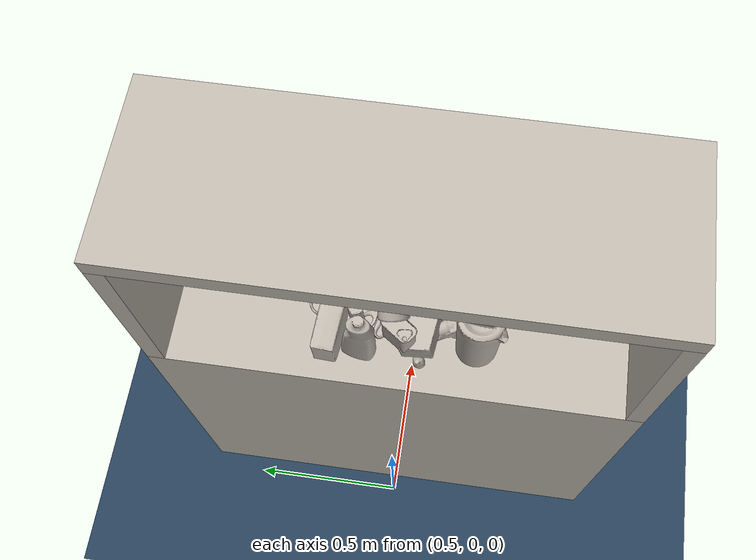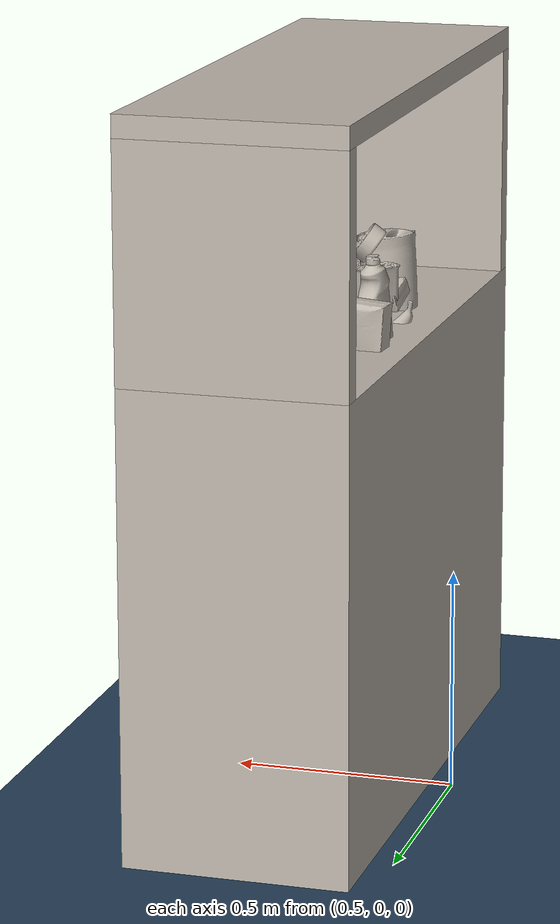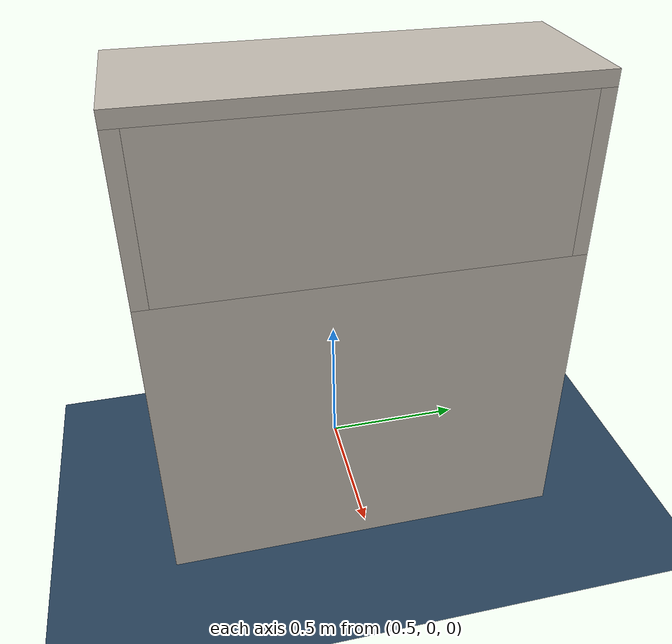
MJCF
<mujoco model="World">

  <compiler angle="radian" balanceinertia="true" inertiafromgeom="true" meshdir="/home/pracsys/GraspClutter6D_local" texturedir="/home/pracsys/GraspClutter6D_local" autolimits="true" />

  <option integrator="Euler" cone="elliptic" solver="CG" noslip_iterations="2">
    <flag warmstart="disable" multiccd="enable" />
  </option>

  <default>
    <geom density="10" />
  </default>

  <asset>

    <texture type="skybox" builtin="flat" rgb1="1 1 1" rgb2="0 0 0" width="512" height="512" />
    <texture name="grid" type="2d" builtin="checker" width="512" height="512" rgb1=".1 .2 .3" rgb2=".2 .3 .4" />
    <material name="grid" texture="grid" texrepeat="2 2" texuniform="true" specular="0" shininess="0" reflectance="0" emission="1" />

    <texture file="models/rs_table/ceramic.png" type="cube" name="tex-ceramic" />
    <material name="table_ceramic" reflectance="0.0" shininess="0.0" specular="0.2" texrepeat="1 1" texture="tex-ceramic" />
  <texture name="obj_000002_0_tex" type="2d" file="models_obj_m/obj_000002/obj_000002.png" /><material name="obj_000002_0_mat" texture="obj_000002_0_tex" specular="1.0" shininess="0.0" /><mesh name="obj_000002_0_vis" file="models_obj_m/obj_000002/obj_000002.obj" /><mesh name="obj_000002_0_obj_000002_collision_0" file="models_obj_m/obj_000002/obj_000002_collision_0.obj" /><mesh name="obj_000002_0_obj_000002_collision_1" file="models_obj_m/obj_000002/obj_000002_collision_1.obj" /><mesh name="obj_000002_0_obj_000002_collision_2" file="models_obj_m/obj_000002/obj_000002_collision_2.obj" /><mesh name="obj_000002_0_obj_000002_collision_3" file="models_obj_m/obj_000002/obj_000002_collision_3.obj" /><mesh name="obj_000002_0_obj_000002_collision_4" file="models_obj_m/obj_000002/obj_000002_collision_4.obj" /><mesh name="obj_000002_0_obj_000002_collision_5" file="models_obj_m/obj_000002/obj_000002_collision_5.obj" /><mesh name="obj_000002_0_obj_000002_collision_6" file="models_obj_m/obj_000002/obj_000002_collision_6.obj" /><mesh name="obj_000002_0_obj_000002_collision_7" file="models_obj_m/obj_000002/obj_000002_collision_7.obj" /><mesh name="obj_000002_0_obj_000002_collision_8" file="models_obj_m/obj_000002/obj_000002_collision_8.obj" /><mesh name="obj_000002_0_obj_000002_collision_9" file="models_obj_m/obj_000002/obj_000002_collision_9.obj" /><mesh name="obj_000002_0_obj_000002_collision_10" file="models_obj_m/obj_000002/obj_000002_collision_10.obj" /><mesh name="obj_000002_0_obj_000002_collision_11" file="models_obj_m/obj_000002/obj_000002_collision_11.obj" /><texture name="obj_000003_0_tex" type="2d" file="models_obj_m/obj_000003/obj_000003.png" /><material name="obj_000003_0_mat" texture="obj_000003_0_tex" specular="1.0" shininess="0.0" /><mesh name="obj_000003_0_vis" file="models_obj_m/obj_000003/obj_000003.obj" /><mesh name="obj_000003_0_obj_000003_collision_0" file="models_obj_m/obj_000003/obj_000003_collision_0.obj" /><mesh name="obj_000003_0_obj_000003_collision_1" file="models_obj_m/obj_000003/obj_000003_collision_1.obj" /><texture name="obj_000006_0_tex" type="2d" file="models_obj_m/obj_000006/obj_000006.png" /><material name="obj_000006_0_mat" texture="obj_000006_0_tex" specular="1.0" shininess="0.0" /><mesh name="obj_000006_0_vis" file="models_obj_m/obj_000006/obj_000006.obj" /><mesh name="obj_000006_0_obj_000006_collision_0" file="models_obj_m/obj_000006/obj_000006_collision_0.obj" /><mesh name="obj_000006_0_obj_000006_collision_1" file="models_obj_m/obj_000006/obj_000006_collision_1.obj" /><mesh name="obj_000006_0_obj_000006_collision_2" file="models_obj_m/obj_000006/obj_000006_collision_2.obj" /><mesh name="obj_000006_0_obj_000006_collision_3" file="models_obj_m/obj_000006/obj_000006_collision_3.obj" /><mesh name="obj_000006_0_obj_000006_collision_4" file="models_obj_m/obj_000006/obj_000006_collision_4.obj" /><mesh name="obj_000006_0_obj_000006_collision_5" file="models_obj_m/obj_000006/obj_000006_collision_5.obj" /><mesh name="obj_000006_0_obj_000006_collision_6" file="models_obj_m/obj_000006/obj_000006_collision_6.obj" /><mesh name="obj_000006_0_obj_000006_collision_7" file="models_obj_m/obj_000006/obj_000006_collision_7.obj" /><mesh name="obj_000006_0_obj_000006_collision_8" file="models_obj_m/obj_000006/obj_000006_collision_8.obj" /><mesh name="obj_000006_0_obj_000006_collision_9" file="models_obj_m/obj_000006/obj_000006_collision_9.obj" /><mesh name="obj_000006_0_obj_000006_collision_10" file="models_obj_m/obj_000006/obj_000006_collision_10.obj" /><mesh name="obj_000006_0_obj_000006_collision_11" file="models_obj_m/obj_000006/obj_000006_collision_11.obj" /><mesh name="obj_000006_0_obj_000006_collision_12" file="models_obj_m/obj_000006/obj_000006_collision_12.obj" /><mesh name="obj_000006_0_obj_000006_collision_13" file="models_obj_m/obj_000006/obj_000006_collision_13.obj" /><texture name="obj_000007_0_tex" type="2d" file="models_obj_m/obj_000007/obj_000007.png" /><material name="obj_000007_0_mat" texture="obj_000007_0_tex" specular="1.0" shininess="0.0" /><mesh name="obj_000007_0_vis" file="models_obj_m/obj_000007/obj_000007.obj" /><mesh name="obj_000007_0_obj_000007_collision_0" file="models_obj_m/obj_000007/obj_000007_collision_0.obj" /><mesh name="obj_000007_0_obj_000007_collision_1" file="models_obj_m/obj_000007/obj_000007_collision_1.obj" /><mesh name="obj_000007_0_obj_000007_collision_2" file="models_obj_m/obj_000007/obj_000007_collision_2.obj" /><mesh name="obj_000007_0_obj_000007_collision_3" file="models_obj_m/obj_000007/obj_000007_collision_3.obj" /><mesh name="obj_000007_0_obj_000007_collision_4" file="models_obj_m/obj_000007/obj_000007_collision_4.obj" /><mesh name="obj_000007_0_obj_000007_collision_5" file="models_obj_m/obj_000007/obj_000007_collision_5.obj" /><mesh name="obj_000007_0_obj_000007_collision_6" file="models_obj_m/obj_000007/obj_000007_collision_6.obj" /><mesh name="obj_000007_0_obj_000007_collision_7" file="models_obj_m/obj_000007/obj_000007_collision_7.obj" /><mesh name="obj_000007_0_obj_000007_collision_8" file="models_obj_m/obj_000007/obj_000007_collision_8.obj" /><texture name="obj_000008_0_tex" type="2d" file="models_obj_m/obj_000008/obj_000008.png" /><material name="obj_000008_0_mat" texture="obj_000008_0_tex" specular="1.0" shininess="0.0" /><mesh name="obj_000008_0_vis" file="models_obj_m/obj_000008/obj_000008.obj" /><mesh name="obj_000008_0_obj_000008_collision_0" file="models_obj_m/obj_000008/obj_000008_collision_0.obj" /><mesh name="obj_000008_0_obj_000008_collision_1" file="models_obj_m/obj_000008/obj_000008_collision_1.obj" /><texture name="obj_000009_0_tex" type="2d" file="models_obj_m/obj_000009/obj_000010.png" /><material name="obj_000009_0_mat" texture="obj_000009_0_tex" specular="1.0" shininess="0.0" /><mesh name="obj_000009_0_vis" file="models_obj_m/obj_000009/obj_000009.obj" /><mesh name="obj_000009_0_obj_000009_collision_0" file="models_obj_m/obj_000009/obj_000009_collision_0.obj" /><mesh name="obj_000009_0_obj_000009_collision_1" file="models_obj_m/obj_000009/obj_000009_collision_1.obj" /><mesh name="obj_000009_0_obj_000009_collision_2" file="models_obj_m/obj_000009/obj_000009_collision_2.obj" /><mesh name="obj_000009_0_obj_000009_collision_3" file="models_obj_m/obj_000009/obj_000009_collision_3.obj" /><mesh name="obj_000009_0_obj_000009_collision_4" file="models_obj_m/obj_000009/obj_000009_collision_4.obj" /><mesh name="obj_000009_0_obj_000009_collision_5" file="models_obj_m/obj_000009/obj_000009_collision_5.obj" /><mesh name="obj_000009_0_obj_000009_collision_6" file="models_obj_m/obj_000009/obj_000009_collision_6.obj" /><mesh name="obj_000009_0_obj_000009_collision_7" file="models_obj_m/obj_000009/obj_000009_collision_7.obj" /><mesh name="obj_000009_0_obj_000009_collision_8" file="models_obj_m/obj_000009/obj_000009_collision_8.obj" /><mesh name="obj_000009_0_obj_000009_collision_9" file="models_obj_m/obj_000009/obj_000009_collision_9.obj" /><mesh name="obj_000009_0_obj_000009_collision_10" file="models_obj_m/obj_000009/obj_000009_collision_10.obj" /><mesh name="obj_000009_0_obj_000009_collision_11" file="models_obj_m/obj_000009/obj_000009_collision_11.obj" /><mesh name="obj_000009_0_obj_000009_collision_12" file="models_obj_m/obj_000009/obj_000009_collision_12.obj" /><mesh name="obj_000009_0_obj_000009_collision_13" file="models_obj_m/obj_000009/obj_000009_collision_13.obj" /><mesh name="obj_000009_0_obj_000009_collision_14" file="models_obj_m/obj_000009/obj_000009_collision_14.obj" /><mesh name="obj_000009_0_obj_000009_collision_15" file="models_obj_m/obj_000009/obj_000009_collision_15.obj" /><mesh name="obj_000009_0_obj_000009_collision_16" file="models_obj_m/obj_000009/obj_000009_collision_16.obj" /><mesh name="obj_000009_0_obj_000009_collision_17" file="models_obj_m/obj_000009/obj_000009_collision_17.obj" /><mesh name="obj_000009_0_obj_000009_collision_18" file="models_obj_m/obj_000009/obj_000009_collision_18.obj" /><mesh name="obj_000009_0_obj_000009_collision_19" file="models_obj_m/obj_000009/obj_000009_collision_19.obj" /><texture name="obj_000010_0_tex" type="2d" file="models_obj_m/obj_000010/obj_000011.png" /><material name="obj_000010_0_mat" texture="obj_000010_0_tex" specular="1.0" shininess="0.0" /><mesh name="obj_000010_0_vis" file="models_obj_m/obj_000010/obj_000010.obj" /><mesh name="obj_000010_0_obj_000010_collision_0" file="models_obj_m/obj_000010/obj_000010_collision_0.obj" /><mesh name="obj_000010_0_obj_000010_collision_1" file="models_obj_m/obj_000010/obj_000010_collision_1.obj" /><texture name="obj_000011_0_tex" type="2d" file="models_obj_m/obj_000011/obj_000011.png" /><material name="obj_000011_0_mat" texture="obj_000011_0_tex" specular="1.0" shininess="0.0" /><mesh name="obj_000011_0_vis" file="models_obj_m/obj_000011/obj_000011.obj" /><mesh name="obj_000011_0_obj_000011_collision_0" file="models_obj_m/obj_000011/obj_000011_collision_0.obj" /><mesh name="obj_000011_0_obj_000011_collision_1" file="models_obj_m/obj_000011/obj_000011_collision_1.obj" /><texture name="obj_000012_0_tex" type="2d" file="models_obj_m/obj_000012/obj_000013.png" /><material name="obj_000012_0_mat" texture="obj_000012_0_tex" specular="1.0" shininess="0.0" /><mesh name="obj_000012_0_vis" file="models_obj_m/obj_000012/obj_000012.obj" /><mesh name="obj_000012_0_obj_000012_collision_0" file="models_obj_m/obj_000012/obj_000012_collision_0.obj" /><mesh name="obj_000012_0_obj_000012_collision_1" file="models_obj_m/obj_000012/obj_000012_collision_1.obj" /><mesh name="obj_000012_0_obj_000012_collision_2" file="models_obj_m/obj_000012/obj_000012_collision_2.obj" /><texture name="obj_000014_0_tex" type="2d" file="models_obj_m/obj_000014/obj_000014.png" /><material name="obj_000014_0_mat" texture="obj_000014_0_tex" specular="1.0" shininess="0.0" /><mesh name="obj_000014_0_vis" file="models_obj_m/obj_000014/obj_000014.obj" /><mesh name="obj_000014_0_obj_000014_collision_0" file="models_obj_m/obj_000014/obj_000014_collision_0.obj" /><mesh name="obj_000014_0_obj_000014_collision_1" file="models_obj_m/obj_000014/obj_000014_collision_1.obj" /><mesh name="obj_000014_0_obj_000014_collision_2" file="models_obj_m/obj_000014/obj_000014_collision_2.obj" /><mesh name="obj_000014_0_obj_000014_collision_3" file="models_obj_m/obj_000014/obj_000014_collision_3.obj" /><mesh name="obj_000014_0_obj_000014_collision_4" file="models_obj_m/obj_000014/obj_000014_collision_4.obj" /><mesh name="obj_000014_0_obj_000014_collision_5" file="models_obj_m/obj_000014/obj_000014_collision_5.obj" /><mesh name="obj_000014_0_obj_000014_collision_6" file="models_obj_m/obj_000014/obj_000014_collision_6.obj" /><mesh name="obj_000014_0_obj_000014_collision_7" file="models_obj_m/obj_000014/obj_000014_collision_7.obj" /><mesh name="obj_000014_0_obj_000014_collision_8" file="models_obj_m/obj_000014/obj_000014_collision_8.obj" /><mesh name="obj_000014_0_obj_000014_collision_9" file="models_obj_m/obj_000014/obj_000014_collision_9.obj" /><mesh name="obj_000014_0_obj_000014_collision_10" file="models_obj_m/obj_000014/obj_000014_collision_10.obj" /><mesh name="obj_000014_0_obj_000014_collision_11" file="models_obj_m/obj_000014/obj_000014_collision_11.obj" /><mesh name="obj_000014_0_obj_000014_collision_12" file="models_obj_m/obj_000014/obj_000014_collision_12.obj" /><mesh name="obj_000014_0_obj_000014_collision_13" file="models_obj_m/obj_000014/obj_000014_collision_13.obj" /><mesh name="obj_000014_0_obj_000014_collision_14" file="models_obj_m/obj_000014/obj_000014_collision_14.obj" /><mesh name="obj_000014_0_obj_000014_collision_15" file="models_obj_m/obj_000014/obj_000014_collision_15.obj" /><mesh name="obj_000014_0_obj_000014_collision_16" file="models_obj_m/obj_000014/obj_000014_collision_16.obj" /><mesh name="obj_000014_0_obj_000014_collision_17" file="models_obj_m/obj_000014/obj_000014_collision_17.obj" /><mesh name="obj_000014_0_obj_000014_collision_18" file="models_obj_m/obj_000014/obj_000014_collision_18.obj" /><mesh name="obj_000014_0_obj_000014_collision_19" file="models_obj_m/obj_000014/obj_000014_collision_19.obj" /><mesh name="obj_000014_0_obj_000014_collision_20" file="models_obj_m/obj_000014/obj_000014_collision_20.obj" /><mesh name="obj_000014_0_obj_000014_collision_21" file="models_obj_m/obj_000014/obj_000014_collision_21.obj" /><mesh name="obj_000014_0_obj_000014_collision_22" file="models_obj_m/obj_000014/obj_000014_collision_22.obj" /><mesh name="obj_000014_0_obj_000014_collision_23" file="models_obj_m/obj_000014/obj_000014_collision_23.obj" /><mesh name="obj_000014_0_obj_000014_collision_24" file="models_obj_m/obj_000014/obj_000014_collision_24.obj" /><mesh name="obj_000014_0_obj_000014_collision_25" file="models_obj_m/obj_000014/obj_000014_collision_25.obj" /><mesh name="obj_000014_0_obj_000014_collision_26" file="models_obj_m/obj_000014/obj_000014_collision_26.obj" /><mesh name="obj_000014_0_obj_000014_collision_27" file="models_obj_m/obj_000014/obj_000014_collision_27.obj" /><mesh name="obj_000014_0_obj_000014_collision_28" file="models_obj_m/obj_000014/obj_000014_collision_28.obj" /><mesh name="obj_000014_0_obj_000014_collision_29" file="models_obj_m/obj_000014/obj_000014_collision_29.obj" /><mesh name="obj_000014_0_obj_000014_collision_30" file="models_obj_m/obj_000014/obj_000014_collision_30.obj" /><mesh name="obj_000014_0_obj_000014_collision_31" file="models_obj_m/obj_000014/obj_000014_collision_31.obj" /><mesh name="obj_000014_0_obj_000014_collision_32" file="models_obj_m/obj_000014/obj_000014_collision_32.obj" /><mesh name="obj_000014_0_obj_000014_collision_33" file="models_obj_m/obj_000014/obj_000014_collision_33.obj" /><mesh name="obj_000014_0_obj_000014_collision_34" file="models_obj_m/obj_000014/obj_000014_collision_34.obj" /><mesh name="obj_000014_0_obj_000014_collision_35" file="models_obj_m/obj_000014/obj_000014_collision_35.obj" /><mesh name="obj_000014_0_obj_000014_collision_36" file="models_obj_m/obj_000014/obj_000014_collision_36.obj" /><mesh name="obj_000014_0_obj_000014_collision_37" file="models_obj_m/obj_000014/obj_000014_collision_37.obj" /><mesh name="obj_000014_0_obj_000014_collision_38" file="models_obj_m/obj_000014/obj_000014_collision_38.obj" /><texture name="obj_000015_0_tex" type="2d" file="models_obj_m/obj_000015/obj_000015.png" /><material name="obj_000015_0_mat" texture="obj_000015_0_tex" specular="1.0" shininess="0.0" /><mesh name="obj_000015_0_vis" file="models_obj_m/obj_000015/obj_000015.obj" /><mesh name="obj_000015_0_obj_000015_collision_0" file="models_obj_m/obj_000015/obj_000015_collision_0.obj" /><mesh name="obj_000015_0_obj_000015_collision_1" file="models_obj_m/obj_000015/obj_000015_collision_1.obj" /><texture name="obj_000017_0_tex" type="2d" file="models_obj_m/obj_000017/obj_000018.png" /><material name="obj_000017_0_mat" texture="obj_000017_0_tex" specular="1.0" shininess="0.0" /><mesh name="obj_000017_0_vis" file="models_obj_m/obj_000017/obj_000017.obj" /><mesh name="obj_000017_0_obj_000017_collision_0" file="models_obj_m/obj_000017/obj_000017_collision_0.obj" /><mesh name="obj_000017_0_obj_000017_collision_1" file="models_obj_m/obj_000017/obj_000017_collision_1.obj" /><mesh name="obj_000017_0_obj_000017_collision_2" file="models_obj_m/obj_000017/obj_000017_collision_2.obj" /><mesh name="obj_000017_0_obj_000017_collision_3" file="models_obj_m/obj_000017/obj_000017_collision_3.obj" /><mesh name="obj_000017_0_obj_000017_collision_4" file="models_obj_m/obj_000017/obj_000017_collision_4.obj" /><mesh name="obj_000017_0_obj_000017_collision_5" file="models_obj_m/obj_000017/obj_000017_collision_5.obj" /><mesh name="obj_000017_0_obj_000017_collision_6" file="models_obj_m/obj_000017/obj_000017_collision_6.obj" /><mesh name="obj_000017_0_obj_000017_collision_7" file="models_obj_m/obj_000017/obj_000017_collision_7.obj" /><mesh name="obj_000017_0_obj_000017_collision_8" file="models_obj_m/obj_000017/obj_000017_collision_8.obj" /><mesh name="obj_000017_0_obj_000017_collision_9" file="models_obj_m/obj_000017/obj_000017_collision_9.obj" /><mesh name="obj_000017_0_obj_000017_collision_10" file="models_obj_m/obj_000017/obj_000017_collision_10.obj" /><mesh name="obj_000017_0_obj_000017_collision_11" file="models_obj_m/obj_000017/obj_000017_collision_11.obj" /><mesh name="obj_000017_0_obj_000017_collision_12" file="models_obj_m/obj_000017/obj_000017_collision_12.obj" /><mesh name="obj_000017_0_obj_000017_collision_13" file="models_obj_m/obj_000017/obj_000017_collision_13.obj" /><mesh name="obj_000017_0_obj_000017_collision_14" file="models_obj_m/obj_000017/obj_000017_collision_14.obj" /><mesh name="obj_000017_0_obj_000017_collision_15" file="models_obj_m/obj_000017/obj_000017_collision_15.obj" /><mesh name="obj_000017_0_obj_000017_collision_16" file="models_obj_m/obj_000017/obj_000017_collision_16.obj" /><mesh name="obj_000017_0_obj_000017_collision_17" file="models_obj_m/obj_000017/obj_000017_collision_17.obj" /><mesh name="obj_000017_0_obj_000017_collision_18" file="models_obj_m/obj_000017/obj_000017_collision_18.obj" /><mesh name="obj_000017_0_obj_000017_collision_19" file="models_obj_m/obj_000017/obj_000017_collision_19.obj" /><mesh name="obj_000017_0_obj_000017_collision_20" file="models_obj_m/obj_000017/obj_000017_collision_20.obj" /><mesh name="obj_000017_0_obj_000017_collision_21" file="models_obj_m/obj_000017/obj_000017_collision_21.obj" /><mesh name="obj_000017_0_obj_000017_collision_22" file="models_obj_m/obj_000017/obj_000017_collision_22.obj" /><mesh name="obj_000017_0_obj_000017_collision_23" file="models_obj_m/obj_000017/obj_000017_collision_23.obj" /><mesh name="obj_000017_0_obj_000017_collision_24" file="models_obj_m/obj_000017/obj_000017_collision_24.obj" /><mesh name="obj_000017_0_obj_000017_collision_25" file="models_obj_m/obj_000017/obj_000017_collision_25.obj" /><mesh name="obj_000017_0_obj_000017_collision_26" file="models_obj_m/obj_000017/obj_000017_collision_26.obj" /><mesh name="obj_000017_0_obj_000017_collision_27" file="models_obj_m/obj_000017/obj_000017_collision_27.obj" /></asset>

  <worldbody>
    <geom name="floor" size="2 2 0.05" type="plane" material="grid" condim="3" />
    <light directional="true" pos="-0.5 0.5 3" dir="0 0 -1" castshadow="false" diffuse="1 1 1" />
    <body name="workspace" pos="0.8 0 0">
      <geom name="shelf_bottom" size="0.25 0.68 0.525" pos="0 0 0.525" type="box" material="table_ceramic" />
      <geom name="shelf_top" size="0.25 0.68 0.025" pos="0 0 1.595" type="box" material="table_ceramic" />
      <geom name="shelf_padding_left" size="0.25 0.025 0.26" pos="0 -0.655 1.31" type="box" material="table_ceramic" />
      <geom name="shelf_padding_right" size="0.25 0.025 0.26" pos="0 0.655 1.31" type="box" material="table_ceramic" />
      <geom name="shelf_padding_back" size="0.05 0.63 0.26" pos="0.2 0 1.31" type="box" material="table_ceramic" />
    </body>
  <body name="obj_000002_0" pos="0.6868555657624849 0.19185210238680359 1.0482066351158468" quat="0.014620507717357742 0.7318698943800738 0.6804638346962215 0.03349131416800178"><joint name="obj_000002_0_joint" type="free" limited="false" actuatorfrclimited="false" /><geom name="obj_000002_0_geom" type="mesh" contype="0" conaffinity="0" group="1" mesh="obj_000002_0_vis" material="obj_000002_0_mat" /><geom type="mesh" contype="3" conaffinity="3" group="3" rgba="0.9306362109825914 0.8330381231198574 0.5807939113573184 1" mesh="obj_000002_0_obj_000002_collision_0" /><geom type="mesh" contype="3" conaffinity="3" group="3" rgba="0.22912688553814242 0.3875596124141527 0.6327362632726903 1" mesh="obj_000002_0_obj_000002_collision_1" /><geom type="mesh" contype="3" conaffinity="3" group="3" rgba="0.5626259340568875 0.06667345172874573 0.9646088448813395 1" mesh="obj_000002_0_obj_000002_collision_2" /><geom type="mesh" contype="3" conaffinity="3" group="3" rgba="0.2846097720774853 0.35893411128232966 0.5389009556396629 1" mesh="obj_000002_0_obj_000002_collision_3" /><geom type="mesh" contype="3" conaffinity="3" group="3" rgba="0.4508218349405261 0.28618698217910077 0.07910182632008134 1" mesh="obj_000002_0_obj_000002_collision_4" /><geom type="mesh" contype="3" conaffinity="3" group="3" rgba="0.9884794335745274 0.515469558330875 0.0707067722442899 1" mesh="obj_000002_0_obj_000002_collision_5" /><geom type="mesh" contype="3" conaffinity="3" group="3" rgba="0.498884402525659 0.4938823346017336 0.12591961447178301 1" mesh="obj_000002_0_obj_000002_collision_6" /><geom type="mesh" contype="3" conaffinity="3" group="3" rgba="0.1950625664278297 0.8240004663666761 0.4881804849656727 1" mesh="obj_000002_0_obj_000002_collision_7" /><geom type="mesh" contype="3" conaffinity="3" group="3" rgba="0.3132936482834743 0.5610004182168095 0.20088818676924047 1" mesh="obj_000002_0_obj_000002_collision_8" /><geom type="mesh" contype="3" conaffinity="3" group="3" rgba="0.13324297406595753 0.30489124850385396 0.8325815622552574 1" mesh="obj_000002_0_obj_000002_collision_9" /><geom type="mesh" contype="3" conaffinity="3" group="3" rgba="0.33502585031452325 0.012724563165045999 0.5652884737523166 1" mesh="obj_000002_0_obj_000002_collision_10" /><geom type="mesh" contype="3" conaffinity="3" group="3" rgba="0.7875683506774841 0.0948782425132162 0.929563921752164 1" mesh="obj_000002_0_obj_000002_collision_11" /></body><body name="obj_000003_0" pos="0.7207852713347482 -0.05978041242309348 1.10268544949473" quat="0.7657134214313187 -0.1487167109749238 -0.6180093209074188 0.09813651404189515"><joint name="obj_000003_0_joint" type="free" limited="false" actuatorfrclimited="false" /><geom name="obj_000003_0_geom" type="mesh" contype="0" conaffinity="0" group="1" mesh="obj_000003_0_vis" material="obj_000003_0_mat" /><geom type="mesh" contype="3" conaffinity="3" group="3" rgba="0.522509730671621 0.2757706064801614 0.3354227120316712 1" mesh="obj_000003_0_obj_000003_collision_0" /><geom type="mesh" contype="3" conaffinity="3" group="3" rgba="0.5516880957351997 0.30786775055087157 0.8022185455408283 1" mesh="obj_000003_0_obj_000003_collision_1" /></body><body name="obj_000006_0" pos="0.6934464843267036 0.013943678757469435 1.2406361281790264" quat="0.8935294993440284 -0.08148878610587974 0.44153035435531784 0.003944328062886784"><joint name="obj_000006_0_joint" type="free" limited="false" actuatorfrclimited="false" /><geom name="obj_000006_0_geom" type="mesh" contype="0" conaffinity="0" group="1" mesh="obj_000006_0_vis" material="obj_000006_0_mat" /><geom type="mesh" contype="3" conaffinity="3" group="3" rgba="0.2826735963389645 0.3732613789385052 0.7850961502526286 1" mesh="obj_000006_0_obj_000006_collision_0" /><geom type="mesh" contype="3" conaffinity="3" group="3" rgba="0.2778119464286495 0.852700815001951 0.9131251478975895 1" mesh="obj_000006_0_obj_000006_collision_1" /><geom type="mesh" contype="3" conaffinity="3" group="3" rgba="0.8020587813288036 0.3025792521954269 0.26202108232011456 1" mesh="obj_000006_0_obj_000006_collision_2" /><geom type="mesh" contype="3" conaffinity="3" group="3" rgba="0.8749284451958235 0.7193776905239141 0.13458988549502138 1" mesh="obj_000006_0_obj_000006_collision_3" /><geom type="mesh" contype="3" conaffinity="3" group="3" rgba="0.2130188599738736 0.6558868892940936 0.9509039115354172 1" mesh="obj_000006_0_obj_000006_collision_4" /><geom type="mesh" contype="3" conaffinity="3" group="3" rgba="0.7150440817211193 0.6337582813459244 0.5959789356841197 1" mesh="obj_000006_0_obj_000006_collision_5" /><geom type="mesh" contype="3" conaffinity="3" group="3" rgba="0.5914430060148156 0.6397733981720453 0.4770481905761884 1" mesh="obj_000006_0_obj_000006_collision_6" /><geom type="mesh" contype="3" conaffinity="3" group="3" rgba="0.5370695134833949 0.5650036394015392 0.4193565416983073 1" mesh="obj_000006_0_obj_000006_collision_7" /><geom type="mesh" contype="3" conaffinity="3" group="3" rgba="0.45822516380627654 0.5322962868917284 0.22216684784693663 1" mesh="obj_000006_0_obj_000006_collision_8" /><geom type="mesh" contype="3" conaffinity="3" group="3" rgba="0.006992755819853924 0.22617836990136309 0.6404316243166618 1" mesh="obj_000006_0_obj_000006_collision_9" /><geom type="mesh" contype="3" conaffinity="3" group="3" rgba="0.11371882398649225 0.6403057750389807 0.6565213489306491 1" mesh="obj_000006_0_obj_000006_collision_10" /><geom type="mesh" contype="3" conaffinity="3" group="3" rgba="0.5479453169554588 0.8715696065342489 0.8827485230284868 1" mesh="obj_000006_0_obj_000006_collision_11" /><geom type="mesh" contype="3" conaffinity="3" group="3" rgba="0.29639456023491106 0.716942263751537 0.6685544064500213 1" mesh="obj_000006_0_obj_000006_collision_12" /><geom type="mesh" contype="3" conaffinity="3" group="3" rgba="0.24060769408938665 0.11426077536513679 0.6643453630239089 1" mesh="obj_000006_0_obj_000006_collision_13" /></body><body name="obj_000007_0" pos="0.7648798883225818 0.13972853604669397 1.0375391102238065" quat="0.6901985700020922 -0.676793758832529 -0.2034355165357784 0.1555317735519813"><joint name="obj_000007_0_joint" type="free" limited="false" actuatorfrclimited="false" /><geom name="obj_000007_0_geom" type="mesh" contype="0" conaffinity="0" group="1" mesh="obj_000007_0_vis" material="obj_000007_0_mat" /><geom type="mesh" contype="3" conaffinity="3" group="3" rgba="0.8352706854217573 0.9362994234831694 0.293846875833475 1" mesh="obj_000007_0_obj_000007_collision_0" /><geom type="mesh" contype="3" conaffinity="3" group="3" rgba="0.19905331661291714 0.4589533019713804 0.06900329109829795 1" mesh="obj_000007_0_obj_000007_collision_1" /><geom type="mesh" contype="3" conaffinity="3" group="3" rgba="0.09308414112438301 0.15050338013169284 0.9151604575537959 1" mesh="obj_000007_0_obj_000007_collision_2" /><geom type="mesh" contype="3" conaffinity="3" group="3" rgba="0.5321495441159548 0.7015834228771671 0.15224241133161276 1" mesh="obj_000007_0_obj_000007_collision_3" /><geom type="mesh" contype="3" conaffinity="3" group="3" rgba="0.23157390654164967 0.05668202494056429 0.16362068486781922 1" mesh="obj_000007_0_obj_000007_collision_4" /><geom type="mesh" contype="3" conaffinity="3" group="3" rgba="0.434682609159569 0.02891498183785912 0.4135716003922958 1" mesh="obj_000007_0_obj_000007_collision_5" /><geom type="mesh" contype="3" conaffinity="3" group="3" rgba="0.3986174188827881 0.6060589903191558 0.6080009673791554 1" mesh="obj_000007_0_obj_000007_collision_6" /><geom type="mesh" contype="3" conaffinity="3" group="3" rgba="0.19756852407433856 0.9438271125215391 0.3383181352472745 1" mesh="obj_000007_0_obj_000007_collision_7" /><geom type="mesh" contype="3" conaffinity="3" group="3" rgba="0.8336516710698538 0.1310754047491739 0.3201867808203366 1" mesh="obj_000007_0_obj_000007_collision_8" /></body><body name="obj_000008_0" pos="0.786832290716083 -0.14105145866378938 1.0351827077119047" quat="0.7129147352862053 -0.4139526849632001 -0.5579809505684871 0.09514732590170284"><joint name="obj_000008_0_joint" type="free" limited="false" actuatorfrclimited="false" /><geom name="obj_000008_0_geom" type="mesh" contype="0" conaffinity="0" group="1" mesh="obj_000008_0_vis" material="obj_000008_0_mat" /><geom type="mesh" contype="3" conaffinity="3" group="3" rgba="0.01671885427652786 0.8783564729505184 0.3287082962157769 1" mesh="obj_000008_0_obj_000008_collision_0" /><geom type="mesh" contype="3" conaffinity="3" group="3" rgba="0.2759906839891276 0.5799351894391934 0.46463070880456725 1" mesh="obj_000008_0_obj_000008_collision_1" /></body><body name="obj_000009_0" pos="0.6784312499304033 -0.0002518093881447858 1.1449082170399265" quat="0.4299959602335367 -0.006390281841601383 -0.000795977920291624 -0.902807844948178"><joint name="obj_000009_0_joint" type="free" limited="false" actuatorfrclimited="false" /><geom name="obj_000009_0_geom" type="mesh" contype="0" conaffinity="0" group="1" mesh="obj_000009_0_vis" material="obj_000009_0_mat" /><geom type="mesh" contype="3" conaffinity="3" group="3" rgba="0.4701424646800718 0.15058678152224558 0.03232555140522908 1" mesh="obj_000009_0_obj_000009_collision_0" /><geom type="mesh" contype="3" conaffinity="3" group="3" rgba="0.6334264391293729 0.7000588704139452 0.9101191958261439 1" mesh="obj_000009_0_obj_000009_collision_1" /><geom type="mesh" contype="3" conaffinity="3" group="3" rgba="0.4796571013469104 0.35150290582234567 0.6375226777586448 1" mesh="obj_000009_0_obj_000009_collision_2" /><geom type="mesh" contype="3" conaffinity="3" group="3" rgba="0.8005895298046106 0.9629796370374781 0.317100801488033 1" mesh="obj_000009_0_obj_000009_collision_3" /><geom type="mesh" contype="3" conaffinity="3" group="3" rgba="0.7316817429575484 0.8125950918942385 0.9770420869852225 1" mesh="obj_000009_0_obj_000009_collision_4" /><geom type="mesh" contype="3" conaffinity="3" group="3" rgba="0.027540659115147248 0.9471989066929749 0.9744029211039258 1" mesh="obj_000009_0_obj_000009_collision_5" /><geom type="mesh" contype="3" conaffinity="3" group="3" rgba="0.2468027165587915 0.11355498828593935 0.640482643727051 1" mesh="obj_000009_0_obj_000009_collision_6" /><geom type="mesh" contype="3" conaffinity="3" group="3" rgba="0.26381115444349046 0.5064233410291425 0.06434432684247016 1" mesh="obj_000009_0_obj_000009_collision_7" /><geom type="mesh" contype="3" conaffinity="3" group="3" rgba="0.39104113124687934 0.2576147934487044 0.9823472559836796 1" mesh="obj_000009_0_obj_000009_collision_8" /><geom type="mesh" contype="3" conaffinity="3" group="3" rgba="0.9013360285468692 0.8336454994592718 0.7736518361085535 1" mesh="obj_000009_0_obj_000009_collision_9" /><geom type="mesh" contype="3" conaffinity="3" group="3" rgba="0.5638034510545271 0.2309865979911192 0.056178319664080933 1" mesh="obj_000009_0_obj_000009_collision_10" /><geom type="mesh" contype="3" conaffinity="3" group="3" rgba="0.07539982230460429 0.8840212053523439 0.37940438346802385 1" mesh="obj_000009_0_obj_000009_collision_11" /><geom type="mesh" contype="3" conaffinity="3" group="3" rgba="0.12997684997558534 0.2197119572502484 0.7348773851044048 1" mesh="obj_000009_0_obj_000009_collision_12" /><geom type="mesh" contype="3" conaffinity="3" group="3" rgba="0.4102032814193337 0.31374038786638225 0.9229380645994204 1" mesh="obj_000009_0_obj_000009_collision_13" /><geom type="mesh" contype="3" conaffinity="3" group="3" rgba="0.6775180913271598 0.3730860518815964 0.7560922645576079 1" mesh="obj_000009_0_obj_000009_collision_14" /><geom type="mesh" contype="3" conaffinity="3" group="3" rgba="0.20013413652544576 0.046709010626810876 0.4530831720844085 1" mesh="obj_000009_0_obj_000009_collision_15" /><geom type="mesh" contype="3" conaffinity="3" group="3" rgba="0.997743233778264 0.8720065066436486 0.22893873285390964 1" mesh="obj_000009_0_obj_000009_collision_16" /><geom type="mesh" contype="3" conaffinity="3" group="3" rgba="0.2486444461791405 0.8482398554397806 0.9913239367051718 1" mesh="obj_000009_0_obj_000009_collision_17" /><geom type="mesh" contype="3" conaffinity="3" group="3" rgba="0.8552881572534362 0.878526833870521 0.5714311973878448 1" mesh="obj_000009_0_obj_000009_collision_18" /><geom type="mesh" contype="3" conaffinity="3" group="3" rgba="0.6375258423342278 0.3334964947472784 0.042644175833863374 1" mesh="obj_000009_0_obj_000009_collision_19" /></body><body name="obj_000010_0" pos="0.6973039051684131 -0.031097058137795314 1.0437253053313742" quat="0.3711885318959775 0.605615642060618 -0.35867637005408093 0.6056401814982575"><joint name="obj_000010_0_joint" type="free" limited="false" actuatorfrclimited="false" /><geom name="obj_000010_0_geom" type="mesh" contype="0" conaffinity="0" group="1" mesh="obj_000010_0_vis" material="obj_000010_0_mat" /><geom type="mesh" contype="3" conaffinity="3" group="3" rgba="0.8732881017396182 0.3343353395712876 0.08871879557869766 1" mesh="obj_000010_0_obj_000010_collision_0" /><geom type="mesh" contype="3" conaffinity="3" group="3" rgba="0.7768969898522989 0.17302799154634285 0.5980561258489338 1" mesh="obj_000010_0_obj_000010_collision_1" /></body><body name="obj_000011_0" pos="0.7119988527952381 -0.20375455554283578 1.1003042122413447" quat="0.9913843553376632 0.015178008950128706 0.049321060860845534 0.12039153205934788"><joint name="obj_000011_0_joint" type="free" limited="false" actuatorfrclimited="false" /><geom name="obj_000011_0_geom" type="mesh" contype="0" conaffinity="0" group="1" mesh="obj_000011_0_vis" material="obj_000011_0_mat" /><geom type="mesh" contype="3" conaffinity="3" group="3" rgba="0.30507868086283874 0.9701993068122707 0.0021639835779936334 1" mesh="obj_000011_0_obj_000011_collision_0" /><geom type="mesh" contype="3" conaffinity="3" group="3" rgba="0.30046086308937203 0.33184924156596896 0.2382777103232726 1" mesh="obj_000011_0_obj_000011_collision_1" /></body><body name="obj_000012_0" pos="0.6574804919196442 0.11122769891451587 1.1075925274699552" quat="0.618971752953356 -0.01731635523732377 0.013634259529900716 -0.7851039548073969"><joint name="obj_000012_0_joint" type="free" limited="false" actuatorfrclimited="false" /><geom name="obj_000012_0_geom" type="mesh" contype="0" conaffinity="0" group="1" mesh="obj_000012_0_vis" material="obj_000012_0_mat" /><geom type="mesh" contype="3" conaffinity="3" group="3" rgba="0.7554614099521485 0.6486382034608017 0.7176584907668884 1" mesh="obj_000012_0_obj_000012_collision_0" /><geom type="mesh" contype="3" conaffinity="3" group="3" rgba="0.7007292636586778 0.4517934483878622 0.09276525431541405 1" mesh="obj_000012_0_obj_000012_collision_1" /><geom type="mesh" contype="3" conaffinity="3" group="3" rgba="0.20665389244215027 0.9686490753588884 0.0818582005279912 1" mesh="obj_000012_0_obj_000012_collision_2" /></body><body name="obj_000014_0" pos="0.7798332948815805 0.2097883280814579 1.0307259266310438" quat="0.92571374979369 -0.0053795568599965225 0.008488196948224447 -0.37809134388856824"><joint name="obj_000014_0_joint" type="free" limited="false" actuatorfrclimited="false" /><geom name="obj_000014_0_geom" type="mesh" contype="0" conaffinity="0" group="1" mesh="obj_000014_0_vis" material="obj_000014_0_mat" /><geom type="mesh" contype="3" conaffinity="3" group="3" rgba="0.16141368952927726 0.8941132712421812 0.5548749728589505 1" mesh="obj_000014_0_obj_000014_collision_0" /><geom type="mesh" contype="3" conaffinity="3" group="3" rgba="0.8498791440201986 0.5078067392722992 0.18104551223069276 1" mesh="obj_000014_0_obj_000014_collision_1" /><geom type="mesh" contype="3" conaffinity="3" group="3" rgba="0.8943954905161718 0.3968195555274622 0.7506667206413482 1" mesh="obj_000014_0_obj_000014_collision_2" /><geom type="mesh" contype="3" conaffinity="3" group="3" rgba="0.35285466454019054 0.3172969522275877 0.7777097891043925 1" mesh="obj_000014_0_obj_000014_collision_3" /><geom type="mesh" contype="3" conaffinity="3" group="3" rgba="0.6717797492805505 0.27468490709077875 0.17325073818140246 1" mesh="obj_000014_0_obj_000014_collision_4" /><geom type="mesh" contype="3" conaffinity="3" group="3" rgba="0.7947496542642261 0.5505795486049172 0.24523806449691898 1" mesh="obj_000014_0_obj_000014_collision_5" /><geom type="mesh" contype="3" conaffinity="3" group="3" rgba="0.055183469003469154 0.8741690348288653 0.6355782986914638 1" mesh="obj_000014_0_obj_000014_collision_6" /><geom type="mesh" contype="3" conaffinity="3" group="3" rgba="0.13714783929055574 0.9099011487118126 0.046849323318082 1" mesh="obj_000014_0_obj_000014_collision_7" /><geom type="mesh" contype="3" conaffinity="3" group="3" rgba="0.5757321500485043 0.7653495890173662 0.11729263428082792 1" mesh="obj_000014_0_obj_000014_collision_8" /><geom type="mesh" contype="3" conaffinity="3" group="3" rgba="0.04262441774970249 0.20853658483044857 0.1703428205193146 1" mesh="obj_000014_0_obj_000014_collision_9" /><geom type="mesh" contype="3" conaffinity="3" group="3" rgba="0.7540479077019692 0.3915149318812796 0.4429325687742387 1" mesh="obj_000014_0_obj_000014_collision_10" /><geom type="mesh" contype="3" conaffinity="3" group="3" rgba="0.9209908675974051 0.10818362438838003 0.6189688407757469 1" mesh="obj_000014_0_obj_000014_collision_11" /><geom type="mesh" contype="3" conaffinity="3" group="3" rgba="0.8239539038983041 0.963565432161378 0.07680378701257484 1" mesh="obj_000014_0_obj_000014_collision_12" /><geom type="mesh" contype="3" conaffinity="3" group="3" rgba="0.3580527646207692 0.9396191389477992 0.6726680134980254 1" mesh="obj_000014_0_obj_000014_collision_13" /><geom type="mesh" contype="3" conaffinity="3" group="3" rgba="0.3187862019948787 0.842895426167915 0.30383779731684313 1" mesh="obj_000014_0_obj_000014_collision_14" /><geom type="mesh" contype="3" conaffinity="3" group="3" rgba="0.8290415048504837 0.43261520532805775 0.4960423319651849 1" mesh="obj_000014_0_obj_000014_collision_15" /><geom type="mesh" contype="3" conaffinity="3" group="3" rgba="0.47137951977516845 0.7080669244219827 0.5190940947326312 1" mesh="obj_000014_0_obj_000014_collision_16" /><geom type="mesh" contype="3" conaffinity="3" group="3" rgba="0.7270019138804638 0.08558543806348451 0.28134693023649016 1" mesh="obj_000014_0_obj_000014_collision_17" /><geom type="mesh" contype="3" conaffinity="3" group="3" rgba="0.2278750701799056 0.45829465031892036 0.24631126738678388 1" mesh="obj_000014_0_obj_000014_collision_18" /><geom type="mesh" contype="3" conaffinity="3" group="3" rgba="0.8345805016638979 0.20150630993040652 0.5303175522053208 1" mesh="obj_000014_0_obj_000014_collision_19" /><geom type="mesh" contype="3" conaffinity="3" group="3" rgba="0.21449831849224799 0.8815788784779822 0.4946040642073185 1" mesh="obj_000014_0_obj_000014_collision_20" /><geom type="mesh" contype="3" conaffinity="3" group="3" rgba="0.5201983270088316 0.07293896462298644 0.47589207267863676 1" mesh="obj_000014_0_obj_000014_collision_21" /><geom type="mesh" contype="3" conaffinity="3" group="3" rgba="0.6790069105260244 0.05281035932712075 0.8960063801553154 1" mesh="obj_000014_0_obj_000014_collision_22" /><geom type="mesh" contype="3" conaffinity="3" group="3" rgba="0.24152118753827823 0.6713577531353322 0.8759765939813601 1" mesh="obj_000014_0_obj_000014_collision_23" /><geom type="mesh" contype="3" conaffinity="3" group="3" rgba="0.8959852812192273 0.6685148885345674 0.043270461595834475 1" mesh="obj_000014_0_obj_000014_collision_24" /><geom type="mesh" contype="3" conaffinity="3" group="3" rgba="0.9103547626218504 0.037810082392731204 0.32968077117363426 1" mesh="obj_000014_0_obj_000014_collision_25" /><geom type="mesh" contype="3" conaffinity="3" group="3" rgba="0.8924690475590995 0.7858539504025231 0.5314529871560677 1" mesh="obj_000014_0_obj_000014_collision_26" /><geom type="mesh" contype="3" conaffinity="3" group="3" rgba="0.8776507752074951 0.006905611208717133 0.13662201660191675 1" mesh="obj_000014_0_obj_000014_collision_27" /><geom type="mesh" contype="3" conaffinity="3" group="3" rgba="0.8980953270074162 0.5018244752305326 0.015371112777743057 1" mesh="obj_000014_0_obj_000014_collision_28" /><geom type="mesh" contype="3" conaffinity="3" group="3" rgba="0.881652186049792 0.6680883818245129 0.8030035683379387 1" mesh="obj_000014_0_obj_000014_collision_29" /><geom type="mesh" contype="3" conaffinity="3" group="3" rgba="0.9161220339223549 0.8259454248436557 0.32114550413575527 1" mesh="obj_000014_0_obj_000014_collision_30" /><geom type="mesh" contype="3" conaffinity="3" group="3" rgba="0.6740594633112692 0.8978357800705399 0.7541896723125306 1" mesh="obj_000014_0_obj_000014_collision_31" /><geom type="mesh" contype="3" conaffinity="3" group="3" rgba="0.0727347622521074 0.5269632119735216 0.3031843793551897 1" mesh="obj_000014_0_obj_000014_collision_32" /><geom type="mesh" contype="3" conaffinity="3" group="3" rgba="0.42563563790720826 0.5797993794734493 0.5845484997962103 1" mesh="obj_000014_0_obj_000014_collision_33" /><geom type="mesh" contype="3" conaffinity="3" group="3" rgba="0.19592235314761497 0.4231444707325488 0.890859832481569 1" mesh="obj_000014_0_obj_000014_collision_34" /><geom type="mesh" contype="3" conaffinity="3" group="3" rgba="0.9949348150733605 0.608647559429353 0.15322985524005972 1" mesh="obj_000014_0_obj_000014_collision_35" /><geom type="mesh" contype="3" conaffinity="3" group="3" rgba="0.7858454240895385 0.323178255755149 0.9736177117477949 1" mesh="obj_000014_0_obj_000014_collision_36" /><geom type="mesh" contype="3" conaffinity="3" group="3" rgba="0.6648284999313376 0.9703306050755396 0.4425452240435842 1" mesh="obj_000014_0_obj_000014_collision_37" /><geom type="mesh" contype="3" conaffinity="3" group="3" rgba="0.8400435277741224 0.6937273949571666 0.6362434619528645 1" mesh="obj_000014_0_obj_000014_collision_38" /></body><body name="obj_000015_0" pos="0.7482458789176922 -0.19084922119831935 1.0561459278575709" quat="0.5514872817100899 0.28494914781905345 0.6422082377400214 0.44970472606819145"><joint name="obj_000015_0_joint" type="free" limited="false" actuatorfrclimited="false" /><geom name="obj_000015_0_geom" type="mesh" contype="0" conaffinity="0" group="1" mesh="obj_000015_0_vis" material="obj_000015_0_mat" /><geom type="mesh" contype="3" conaffinity="3" group="3" rgba="0.3190316346741193 0.1952698898252364 0.8681956882216872 1" mesh="obj_000015_0_obj_000015_collision_0" /><geom type="mesh" contype="3" conaffinity="3" group="3" rgba="0.05496090459096381 0.16901046389765384 0.29761740439272677 1" mesh="obj_000015_0_obj_000015_collision_1" /></body><body name="obj_000017_0" pos="0.7897945007126281 0.06658321753344784 1.0533211833622194" quat="0.6826682181655116 0.008663738922875685 0.0006837525393960098 -0.7306767931288545"><joint name="obj_000017_0_joint" type="free" limited="false" actuatorfrclimited="false" /><geom name="obj_000017_0_geom" type="mesh" contype="0" conaffinity="0" group="1" mesh="obj_000017_0_vis" material="obj_000017_0_mat" /><geom type="mesh" contype="3" conaffinity="3" group="3" rgba="0.8300607436027256 0.7746450626520026 0.028259677595148802 1" mesh="obj_000017_0_obj_000017_collision_0" /><geom type="mesh" contype="3" conaffinity="3" group="3" rgba="0.8722382693318378 0.7274771061770118 0.3531693377771803 1" mesh="obj_000017_0_obj_000017_collision_1" /><geom type="mesh" contype="3" conaffinity="3" group="3" rgba="0.5980877609329729 0.08964925108942157 0.9827409328247976 1" mesh="obj_000017_0_obj_000017_collision_2" /><geom type="mesh" contype="3" conaffinity="3" group="3" rgba="0.12896852327670105 0.23262496541784183 0.708307388236716 1" mesh="obj_000017_0_obj_000017_collision_3" /><geom type="mesh" contype="3" conaffinity="3" group="3" rgba="0.49139690091838406 0.8926335265499304 0.5725586181467778 1" mesh="obj_000017_0_obj_000017_collision_4" /><geom type="mesh" contype="3" conaffinity="3" group="3" rgba="0.7937783832204612 0.42217433502668733 0.08859246894572148 1" mesh="obj_000017_0_obj_000017_collision_5" /><geom type="mesh" contype="3" conaffinity="3" group="3" rgba="0.31968501261458615 0.055692886468857505 0.13372686667046396 1" mesh="obj_000017_0_obj_000017_collision_6" /><geom type="mesh" contype="3" conaffinity="3" group="3" rgba="0.13222025522357372 0.17526274312101753 0.06896550916264677 1" mesh="obj_000017_0_obj_000017_collision_7" /><geom type="mesh" contype="3" conaffinity="3" group="3" rgba="0.619764861047721 0.6525147311748656 0.1945147804146634 1" mesh="obj_000017_0_obj_000017_collision_8" /><geom type="mesh" contype="3" conaffinity="3" group="3" rgba="0.7542938162430041 0.5932445765901436 0.7103646795954568 1" mesh="obj_000017_0_obj_000017_collision_9" /><geom type="mesh" contype="3" conaffinity="3" group="3" rgba="0.2524389464191312 0.4250197643184034 0.5484201401942239 1" mesh="obj_000017_0_obj_000017_collision_10" /><geom type="mesh" contype="3" conaffinity="3" group="3" rgba="0.12747630615148275 0.8773457669467531 0.2903516195529615 1" mesh="obj_000017_0_obj_000017_collision_11" /><geom type="mesh" contype="3" conaffinity="3" group="3" rgba="0.36705284536176563 0.43857882856348707 0.1921920616144135 1" mesh="obj_000017_0_obj_000017_collision_12" /><geom type="mesh" contype="3" conaffinity="3" group="3" rgba="0.020558595977965055 0.21526825750714773 0.772725517547242 1" mesh="obj_000017_0_obj_000017_collision_13" /><geom type="mesh" contype="3" conaffinity="3" group="3" rgba="0.10547210479742064 0.9890552387987501 0.2674120461420154 1" mesh="obj_000017_0_obj_000017_collision_14" /><geom type="mesh" contype="3" conaffinity="3" group="3" rgba="0.5360270978662599 0.047077211229519134 0.4732059459915734 1" mesh="obj_000017_0_obj_000017_collision_15" /><geom type="mesh" contype="3" conaffinity="3" group="3" rgba="0.32224738434780165 0.15368027561517583 0.33294464645257393 1" mesh="obj_000017_0_obj_000017_collision_16" /><geom type="mesh" contype="3" conaffinity="3" group="3" rgba="0.062153350878422775 0.15503522074777376 0.031107839074490995 1" mesh="obj_000017_0_obj_000017_collision_17" /><geom type="mesh" contype="3" conaffinity="3" group="3" rgba="0.8894341143153127 0.9274654291220618 0.8960713779272304 1" mesh="obj_000017_0_obj_000017_collision_18" /><geom type="mesh" contype="3" conaffinity="3" group="3" rgba="0.6407302652172892 0.7024854384405839 0.8132487939275371 1" mesh="obj_000017_0_obj_000017_collision_19" /><geom type="mesh" contype="3" conaffinity="3" group="3" rgba="0.4219128475173737 0.12864992232644612 0.6362594297911104 1" mesh="obj_000017_0_obj_000017_collision_20" /><geom type="mesh" contype="3" conaffinity="3" group="3" rgba="0.6553489886066428 0.7743604048132783 0.24056368137361295 1" mesh="obj_000017_0_obj_000017_collision_21" /><geom type="mesh" contype="3" conaffinity="3" group="3" rgba="0.0020229106216186343 0.307330070733969 0.17780994515928916 1" mesh="obj_000017_0_obj_000017_collision_22" /><geom type="mesh" contype="3" conaffinity="3" group="3" rgba="0.6179802568288576 0.3727782053738845 0.7596080060713355 1" mesh="obj_000017_0_obj_000017_collision_23" /><geom type="mesh" contype="3" conaffinity="3" group="3" rgba="0.2543795317816884 0.44576637101255845 0.39514403782482055 1" mesh="obj_000017_0_obj_000017_collision_24" /><geom type="mesh" contype="3" conaffinity="3" group="3" rgba="0.1432102771351177 0.4024857781955712 0.7572092015391542 1" mesh="obj_000017_0_obj_000017_collision_25" /><geom type="mesh" contype="3" conaffinity="3" group="3" rgba="0.5090090981373664 0.38439090770599904 0.5322095653024554 1" mesh="obj_000017_0_obj_000017_collision_26" /><geom type="mesh" contype="3" conaffinity="3" group="3" rgba="0.40226807840950896 0.5364817416307209 0.6608784606481888 1" mesh="obj_000017_0_obj_000017_collision_27" /></body></worldbody>

<size memory="64M" /></mujoco>
